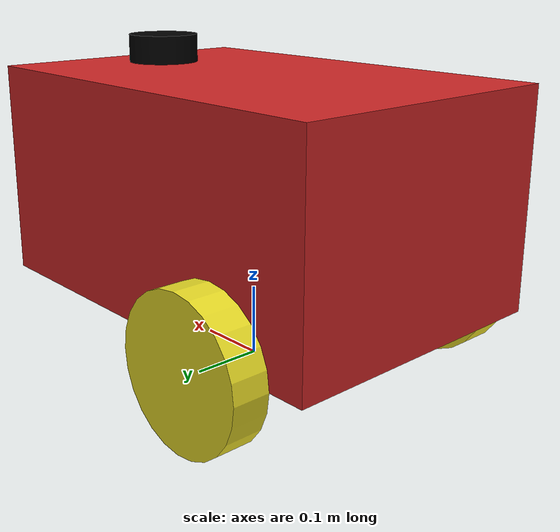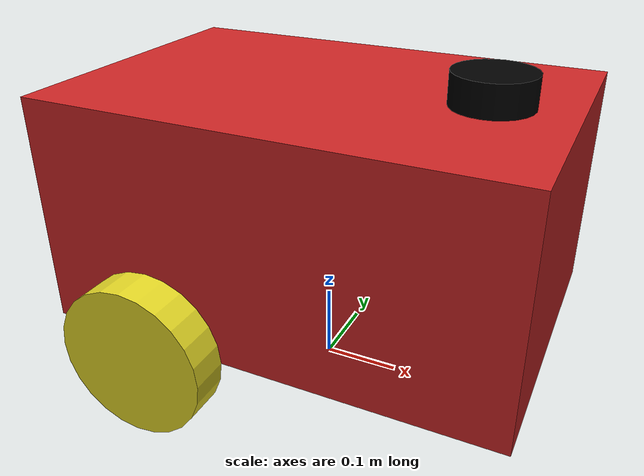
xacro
<?xml version="1.0"?>
<robot name="health_bot" xmlns:xacro="http://www.ros.org/wiki/xacro">
<material name="black">
  <color rgba="0 0 0 1"/>
</material>

    <!-- 1. PHYSICAL DIMENSIONS (Defined First) -->
    <xacro:property name="a" value="0.6" /> <!-- Length (X) -->
    <xacro:property name="b" value="0.4" /> <!-- Width (Y) -->
    <xacro:property name="c" value="0.3" /> <!-- Height (Z) -->

    <!-- WHEEL DIMENSIONS -->
    <xacro:property name="r" value="0.1" />  <!-- Drive Wheel Radius -->
    <xacro:property name="d" value="0.05" /> <!-- Drive Wheel Width -->
    <xacro:property name="cr" value="0.1" /> <!-- Caster Radius -->
       <!-- LiDAR PROPERTIES -->
    <xacro:property name="laser_r" value="0.05" />
    <xacro:property name="laser_l" value="0.04" />
    <xacro:property name="laser_m" value="0.1" />
    <!-- 2. CALCULATED OFFSETS (Defined Second) -->
    <xacro:property name="wheel_y_offset" value="${(b/2) + (d/2)}" />

    <!-- 3. INCLUDE EXTERNAL FILES (Now they can see the variables above) -->
    <xacro:include filename="inertials.xacro" />
    <xacro:include filename="robot.gazebo" />

    <!-- 4. ROBOT STRUCTURE -->
    <link name="base_footprint"></link>

    <joint name="base_joint" type="fixed">
        <parent link="base_footprint" />
        <child link="body_link" />
        <origin xyz="0 0 ${r}" rpy="0 0 0" />
    </joint>

    <link name="body_link">
        <visual>
            <origin xyz="0 0 ${c/2}" rpy="0 0 0" />
            <geometry> <box size="${a} ${b} ${c}" /> </geometry>
        </visual>
        <collision>
            <origin xyz="0 0 ${c/2}" rpy="0 0 0" />
            <geometry> <box size="${a} ${b} ${c}" /> </geometry>
        </collision>
        <xacro:inertial_body />
    </link>

    <!-- WHEEL MACRO -->
    <xacro:macro name="m_wheel" params="prefix y_reflect">
        <joint name="${prefix}_wheel_joint" type="continuous">
            <parent link="body_link" />
            <child link="${prefix}_wheel_link" />
            <origin xyz="-0.15 ${y_reflect * wheel_y_offset} 0" rpy="0 0 0" />
            <axis xyz="0 1 0" />
        </joint>
        <link name="${prefix}_wheel_link">
            <visual>
                <origin rpy="${pi/2} 0 0" xyz="0 0 0" />
                <geometry> <cylinder radius="${r}" length="${d}" /> </geometry>
            </visual>
            <collision>
                <origin rpy="${pi/2} 0 0" xyz="0 0 0" />
                <geometry> <cylinder radius="${r}" length="${d}" /> </geometry>
            </collision>
            <xacro:inertial_wheel />
        </link>
    </xacro:macro>
    <xacro:m_wheel prefix="right" y_reflect="-1" />
    <xacro:m_wheel prefix="left" y_reflect="1" />

    <!-- CASTER WHEEL (FRONT) -->
    <joint name="caster_joint" type="fixed">
        <parent link="body_link" />
        <child link="caster_link" />
        <origin xyz="0.2 0 0" rpy="0 0 0" />
    </joint>

    <link name="caster_link">
        <visual>
            <geometry> <sphere radius="${cr}" /> </geometry>
        </visual>
        <collision>
            <geometry> <sphere radius="${cr}" /> </geometry>
        </collision>
        <xacro:inertial_caster />
    </link>
    <!-- LiDAR JOINT (Top Front) -->
    <joint name="laser_joint" type="fixed">
        <parent link="body_link" />
        <child link="laser_link" />
         <origin xyz="0.2 0 ${c + laser_l/2}" rpy="0 0 0" />
    </joint>

    <link name="laser_link">
        <visual>
            <geometry> <cylinder radius="${laser_r}" length="${laser_l}" /> </geometry>
            <material name="black" />
        </visual>
        <collision>
            <geometry> <cylinder radius="${laser_r}" length="${laser_l}" /> </geometry>
        </collision>

        <xacro:inertial_lidar/>
    </link>

</robot>

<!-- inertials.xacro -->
<robot xmlns:xacro="http://www.ros.org/wiki/xacro">

    <!-- Material Densities (kg/m^3) - 600 is stable for simulation -->
    <xacro:property name="d1" value="600.0"/>
    <xacro:property name="d2" value="600.0"/>
    <xacro:property name="d3" value="600.0"/>

    <!-- Mass Calculations -->
    <xacro:property name="m1" value="${d1 * a * b * c}"/>
    <xacro:property name="m2" value="${d2 * pi * r * r * d}"/>
    <xacro:property name="m3" value="${d3 * (4/3) * pi * cr * cr * cr}"/>

    <!-- Body Inertia Moments (Box) -->
    <xacro:property name="Ix_body" value="${m1 * (b*b + c*c) / 12}" />
    <xacro:property name="Iy_body" value="${m1 * (a*a + c*c) / 12}" />
    <xacro:property name="Iz_body" value="${m1 * (a*a + b*b) / 12}" />

    <!-- Wheel Inertia Moments (Cylinder) -->
    <!-- When cylinder is rotated pi/2 on X, Iz becomes the rolling axis -->
    <xacro:property name="Iz_wheel" value="${0.5 * m2 * r * r}" />
    <xacro:property name="I_wheel" value="${(1.0/12.0) * m2 * (3.0*r*r + d*d)}" />

    <!-- Caster Inertia Moments (Sphere) -->
    <xacro:property name="I_caster" value="${(2.0/5.0) * m3 * cr * cr}" />

    <!-- BODY INERTIA MACRO -->
    <xacro:macro name="inertial_body">
        <inertial>
            <origin rpy="0 0 0" xyz="0 0 ${c/2}" />
            <mass value="${m1}" />
            <inertia ixx="${Ix_body}" ixy="0.0" ixz="0.0"
                     iyy="${Iy_body}" iyz="0.0"
                     izz="${Iz_body}" />
        </inertial>
    </xacro:macro>

    <!-- WHEEL INERTIA MACRO -->
    <xacro:macro name="inertial_wheel">
        <inertial>
            <!-- Important: Orientation of mass must match visual orientation -->
            <origin rpy="${pi/2} 0 0" xyz="0 0 0"/>
            <mass value="${m2}" />
            <inertia ixx="${I_wheel}" ixy="0.0" ixz="0.0"
                     iyy="${I_wheel}" iyz="0.0"
                     izz="${Iz_wheel}" />
        </inertial>
    </xacro:macro>

    <!-- CASTER INERTIA MACRO -->
    <xacro:macro name="inertial_caster">
        <inertial>
            <origin rpy="0 0 0" xyz="0 0 0"/>
            <mass value="${m3}" />
            <inertia ixx="${I_caster}" ixy="0.0" ixz="0.0"
                     iyy="${I_caster}" iyz="0.0"
                     izz="${I_caster}" />
        </inertial>
    </xacro:macro>

</robot>
